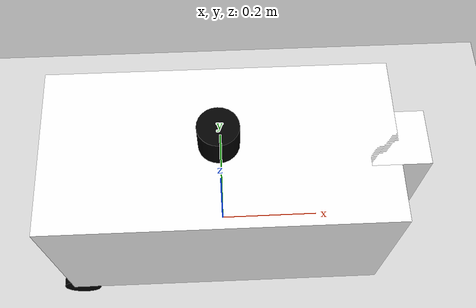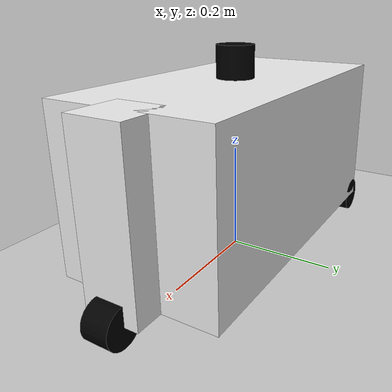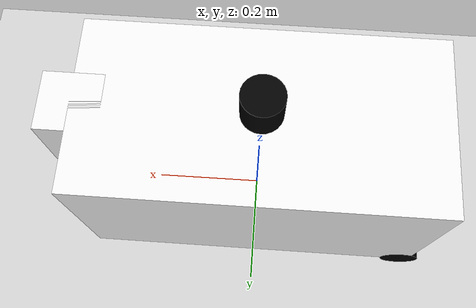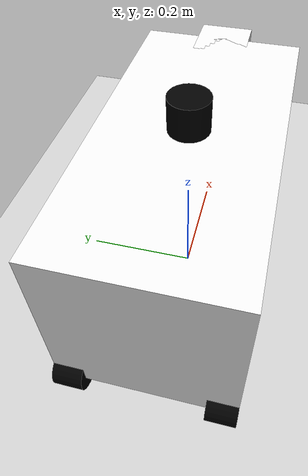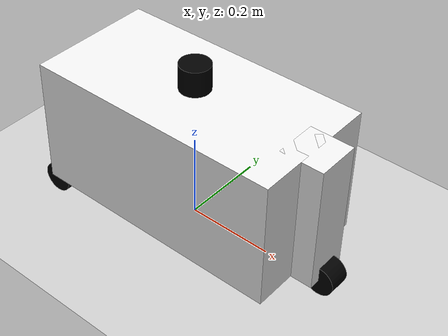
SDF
<sdf version='1.10'>
  <world name='empty'>
    <physics name='1ms' type='ignored'>
      <max_step_size>0.001</max_step_size>
      <real_time_factor>1</real_time_factor>
      <real_time_update_rate>1000</real_time_update_rate>
    </physics>
    <plugin name='gz::sim::systems::Physics' filename='gz-sim-physics-system'/>
    <plugin name='gz::sim::systems::UserCommands' filename='gz-sim-user-commands-system'/>
    <plugin name='gz::sim::systems::SceneBroadcaster' filename='gz-sim-scene-broadcaster-system'/>
    <plugin name='gz::sim::systems::Contact' filename='gz-sim-contact-system'/>
    <gravity>0 0 -9.8000000000000007</gravity>
    <magnetic_field>5.5644999999999998e-06 2.2875799999999999e-05 -4.2388400000000002e-05</magnetic_field>
    <atmosphere type='adiabatic'/>
    <scene>
      <ambient>0.400000006 0.400000006 0.400000006 1</ambient>
      <background>0.699999988 0.699999988 0.699999988 1</background>
      <shadows>true</shadows>
    </scene>
    <model name='ground_plane'>
      <static>true</static>
      <link name='link'>
        <collision name='collision'>
          <geometry>
            <plane>
              <normal>0 0 1</normal>
              <size>100 100</size>
            </plane>
          </geometry>
          <surface>
            <friction>
              <ode/>
            </friction>
            <bounce/>
            <contact/>
          </surface>
        </collision>
        <visual name='visual'>
          <geometry>
            <plane>
              <normal>0 0 1</normal>
              <size>100 100</size>
            </plane>
          </geometry>
          <material>
            <ambient>0.800000012 0.800000012 0.800000012 1</ambient>
            <diffuse>0.800000012 0.800000012 0.800000012 1</diffuse>
            <specular>0.800000012 0.800000012 0.800000012 1</specular>
          </material>
        </visual>
        <pose>0 0 0 0 0 0</pose>
        <inertial>
          <pose>0 0 0 0 0 0</pose>
          <mass>1</mass>
          <inertia>
            <ixx>1</ixx>
            <ixy>0</ixy>
            <ixz>0</ixz>
            <iyy>1</iyy>
            <iyz>0</iyz>
            <izz>1</izz>
          </inertia>
        </inertial>
        <enable_wind>false</enable_wind>
      </link>
      <pose>0 0 0 0 0 0</pose>
      <self_collide>false</self_collide>
    </model>
    <model name='tortoisebot'>
      <link name='base_link'>
        <inertial>
          <pose>0 0 0 0 0 0</pose>
          <mass>1</mass>
          <inertia>
            <ixx>0.014999999999999999</ixx>
            <ixy>0</ixy>
            <ixz>0</ixz>
            <iyy>0.037499999999999999</iyy>
            <iyz>0</iyz>
            <izz>0.037499999999999999</izz>
          </inertia>
        </inertial>
        <collision name='base_link_collision'>
          <pose>0 0 0 0 0 0</pose>
          <geometry>
            <box>
              <size>0.59999999999999998 0.29999999999999999 0.29999999999999999</size>
            </box>
          </geometry>
          <surface>
            <friction>
              <ode/>
            </friction>
            <bounce/>
            <contact/>
          </surface>
        </collision>
        <collision name='base_link_fixed_joint_lump__lidar_link_collision_1'>
          <pose>0 0 0.17999999999999999 0 0 0</pose>
          <geometry>
            <cylinder>
              <length>0.059999999999999998</length>
              <radius>0.035000000000000003</radius>
            </cylinder>
          </geometry>
          <surface>
            <contact>
              <ode/>
            </contact>
            <friction>
              <ode/>
            </friction>
            <bounce/>
          </surface>
        </collision>
        <visual name='base_link_visual'>
          <pose>0 0 0 0 0 0</pose>
          <geometry>
            <box>
              <size>0.59999999999999998 0.29999999999999999 0.29999999999999999</size>
            </box>
          </geometry>
          <material>
            <diffuse>0.9375 0.9375 0.9375 1</diffuse>
            <ambient>0.9375 0.9375 0.9375 1</ambient>
          </material>
        </visual>
        <visual name='base_link_fixed_joint_lump__lidar_link_visual_1'>
          <pose>0 0 0.17999999999999999 0 0 0</pose>
          <geometry>
            <cylinder>
              <length>0.059999999999999998</length>
              <radius>0.035000000000000003</radius>
            </cylinder>
          </geometry>
          <material>
            <diffuse>0 0 0 1</diffuse>
            <ambient>0 0 0 1</ambient>
          </material>
        </visual>
        <sensor name='gpu_lidar' type='gpu_lidar'>
          <pose>0 0 0.17999999999999999 0 0 0</pose>
          <topic>scan</topic>
          <update_rate>10</update_rate>
          <enable_metrics>false</enable_metrics>
          <lidar>
            <scan>
              <horizontal>
                <samples>720</samples>
                <resolution>1</resolution>
                <min_angle>-3.1400000000000001</min_angle>
                <max_angle>3.1400000000000001</max_angle>
              </horizontal>
              <vertical>
                <samples>1</samples>
                <min_angle>0</min_angle>
                <max_angle>0</max_angle>
                <resolution>0.01</resolution>
              </vertical>
            </scan>
            <range>
              <min>0.080000000000000002</min>
              <max>10</max>
              <resolution>0.01</resolution>
            </range>
            <noise>
              <type>gaussian</type>
              <mean>0</mean>
              <stddev>0.02</stddev>
            </noise>
            <visibility_mask>4294967295</visibility_mask>
          </lidar>
          <plugin name='gz::sim::systems::Sensors' filename='gz-sim-sensors-system'>
            <render_engine>ogre2</render_engine>
          </plugin>
        </sensor>
        <pose>0 0 0 0 0 0</pose>
        <enable_wind>false</enable_wind>
      </link>
      <joint name='front_caster_joint' type='revolute'>
        <pose>0 0 0 0 6.3679522799512102e-42 0</pose>
        <parent>base_link</parent>
        <child>front_caster</child>
        <axis>
          <xyz>-5.7054782209804604e-43 0 1</xyz>
          <limit>
            <lower>-inf</lower>
            <upper>inf</upper>
            <effort>inf</effort>
            <velocity>inf</velocity>
            <stiffness>100000000</stiffness>
            <dissipation>1</dissipation>
          </limit>
          <dynamics>
            <spring_reference>0</spring_reference>
            <spring_stiffness>0</spring_stiffness>
            <damping>0</damping>
            <friction>0</friction>
          </dynamics>
        </axis>
      </joint>
      <link name='front_caster'>
        <pose>0.29999999999999999 -7.9762041671258592e-25 1.1102230246251565e-16 -1.1747445874033268e-23 -1.5322800294808953e-26 2.0901109985332711e-12</pose>
        <inertial>
          <pose>0 0 0 0 0 0</pose>
          <mass>0.10000000000000001</mass>
          <inertia>
            <ixx>0.00083000000000000001</ixx>
            <ixy>0</ixy>
            <ixz>0</ixz>
            <iyy>0.00083000000000000001</iyy>
            <iyz>0</iyz>
            <izz>0.00016699999999999999</izz>
          </inertia>
        </inertial>
        <collision name='front_caster_collision'>
          <pose>0 0 0 0 0 0</pose>
          <geometry>
            <box>
              <size>0.10000000000000001 0.10000000000000001 0.29999999999999999</size>
            </box>
          </geometry>
          <surface>
            <friction>
              <ode/>
            </friction>
            <bounce/>
            <contact/>
          </surface>
        </collision>
        <visual name='front_caster_visual'>
          <pose>0 0 0 0 0 0</pose>
          <geometry>
            <box>
              <size>0.10000000000000001 0.10000000000000001 0.29999999999999999</size>
            </box>
          </geometry>
          <material>
            <diffuse>0.9375 0.9375 0.9375 1</diffuse>
            <ambient>0.9375 0.9375 0.9375 1</ambient>
          </material>
        </visual>
        <enable_wind>false</enable_wind>
      </link>
      <joint name='front_wheel_joint' type='revolute'>
        <pose>-5.5511151231257827e-17 8.3266726846886741e-17 4.5408589269355787e-17 -2.9387358770557175e-39 -1.6155871338926322e-27 -1.6155871338926322e-27</pose>
        <parent>front_caster</parent>
        <child>front_wheel</child>
        <axis>
          <xyz>-1.2116903504194741e-27 4.8939783509988934e-55 1</xyz>
          <limit>
            <lower>-inf</lower>
            <upper>inf</upper>
            <effort>inf</effort>
            <velocity>inf</velocity>
            <stiffness>100000000</stiffness>
            <dissipation>1</dissipation>
          </limit>
          <dynamics>
            <spring_reference>0</spring_reference>
            <spring_stiffness>0</spring_stiffness>
            <damping>0</damping>
            <friction>0</friction>
          </dynamics>
        </axis>
      </joint>
      <link name='front_wheel'>
        <pose>0.35000000000000014 1.0450554989636821e-13 -0.14999999999999983 -1.5708000000000004 3.9892729160713261e-12 2.090096345121454e-12</pose>
        <inertial>
          <pose>0 0 0 0 0 0</pose>
          <mass>0.10000000000000001</mass>
          <inertia>
            <ixx>5.1458000000000001e-05</ixx>
            <ixy>0</ixy>
            <ixz>0</ixz>
            <iyy>5.1458000000000001e-05</iyy>
            <iyz>0</iyz>
            <izz>6.1249999999999998e-05</izz>
          </inertia>
        </inertial>
        <collision name='front_wheel_collision'>
          <pose>0 0 0 0 0 0</pose>
          <geometry>
            <cylinder>
              <length>0.050000000000000003</length>
              <radius>0.035000000000000003</radius>
            </cylinder>
          </geometry>
          <surface>
            <friction>
              <ode/>
            </friction>
            <bounce/>
            <contact/>
          </surface>
        </collision>
        <visual name='front_wheel_visual'>
          <pose>0 0 0 0 0 0</pose>
          <geometry>
            <cylinder>
              <length>0.050000000000000003</length>
              <radius>0.035000000000000003</radius>
            </cylinder>
          </geometry>
          <material>
            <diffuse>0 0 0 1</diffuse>
            <ambient>0 0 0 1</ambient>
          </material>
        </visual>
        <enable_wind>false</enable_wind>
      </link>
      <joint name='left_wheel_joint' type='revolute'>
        <pose>0 -5.5511151231257827e-17 5.5511151231257827e-17 4.0091470651382935e-51 5.169878828456423e-26 1.5509636485369269e-25</pose>
        <parent>base_link</parent>
        <child>left_wheel</child>
        <axis>
          <xyz>0 0 1</xyz>
          <limit>
            <lower>-inf</lower>
            <upper>inf</upper>
            <effort>inf</effort>
            <velocity>inf</velocity>
            <stiffness>100000000</stiffness>
            <dissipation>1</dissipation>
          </limit>
          <dynamics>
            <spring_reference>0</spring_reference>
            <spring_stiffness>0</spring_stiffness>
            <damping>0</damping>
            <friction>0</friction>
          </dynamics>
        </axis>
      </joint>
      <link name='left_wheel'>
        <pose>-0.28250000002057285 0.12499999999816902 -0.14999972424970234 -1.5707999999475448 -5.879096778837494e-10 -6.6985783504433189e-14</pose>
        <inertial>
          <pose>0 0 0 0 0 0</pose>
          <mass>0.10000000000000001</mass>
          <inertia>
            <ixx>5.1458000000000001e-05</ixx>
            <ixy>0</ixy>
            <ixz>0</ixz>
            <iyy>5.1458000000000001e-05</iyy>
            <iyz>0</iyz>
            <izz>6.1249999999999998e-05</izz>
          </inertia>
        </inertial>
        <collision name='left_wheel_collision'>
          <pose>0 0 0 0 0 0</pose>
          <geometry>
            <cylinder>
              <length>0.050000000000000003</length>
              <radius>0.035000000000000003</radius>
            </cylinder>
          </geometry>
          <surface>
            <friction>
              <ode/>
            </friction>
            <bounce/>
            <contact/>
          </surface>
        </collision>
        <visual name='left_wheel_visual'>
          <pose>0 0 0 0 0 0</pose>
          <geometry>
            <cylinder>
              <length>0.050000000000000003</length>
              <radius>0.035000000000000003</radius>
            </cylinder>
          </geometry>
          <material>
            <diffuse>0 0 0 1</diffuse>
            <ambient>0 0 0 1</ambient>
          </material>
        </visual>
        <enable_wind>false</enable_wind>
      </link>
      <joint name='right_wheel_joint' type='revolute'>
        <pose>-1.1102230246251565e-16 8.3266726846886741e-17 1.3877787807814457e-17 0 0 5.169878828456423e-26</pose>
        <parent>base_link</parent>
        <child>right_wheel</child>
        <axis>
          <xyz>0 0 1</xyz>
          <limit>
            <lower>-inf</lower>
            <upper>inf</upper>
            <effort>inf</effort>
            <velocity>inf</velocity>
            <stiffness>100000000</stiffness>
            <dissipation>1</dissipation>
          </limit>
          <dynamics>
            <spring_reference>0</spring_reference>
            <spring_stiffness>0</spring_stiffness>
            <damping>0</damping>
            <friction>0</friction>
          </dynamics>
        </axis>
      </joint>
      <link name='right_wheel'>
        <pose>-0.28250000002058945 -0.12500000000183098 -0.14999972426281619 -1.5707999999475448 -5.8790979906942163e-10 -6.6985783057393767e-14</pose>
        <inertial>
          <pose>0 0 0 0 0 0</pose>
          <mass>0.10000000000000001</mass>
          <inertia>
            <ixx>5.1458000000000001e-05</ixx>
            <ixy>0</ixy>
            <ixz>0</ixz>
            <iyy>5.1458000000000001e-05</iyy>
            <iyz>0</iyz>
            <izz>6.1249999999999998e-05</izz>
          </inertia>
        </inertial>
        <collision name='right_wheel_collision'>
          <pose>0 0 0 0 0 0</pose>
          <geometry>
            <cylinder>
              <length>0.050000000000000003</length>
              <radius>0.035000000000000003</radius>
            </cylinder>
          </geometry>
          <surface>
            <friction>
              <ode/>
            </friction>
            <bounce/>
            <contact/>
          </surface>
        </collision>
        <visual name='right_wheel_visual'>
          <pose>0 0 0 0 0 0</pose>
          <geometry>
            <cylinder>
              <length>0.050000000000000003</length>
              <radius>0.035000000000000003</radius>
            </cylinder>
          </geometry>
          <material>
            <diffuse>0 0 0 1</diffuse>
            <ambient>0 0 0 1</ambient>
          </material>
        </visual>
        <enable_wind>false</enable_wind>
      </link>
      <plugin name='gz::sim::systems::DiffDrive' filename='gz-sim-diff-drive-system'>
        <left_joint>left_wheel_joint</left_joint>
        <right_joint>right_wheel_joint</right_joint>
        <max_linear_acceleration>100</max_linear_acceleration>
        <max_angular_acceleration>100</max_angular_acceleration>
        <wheel_separation>0.25</wheel_separation>
        <wheel_radius>0.035</wheel_radius>
        <odom_publish_frequency>1</odom_publish_frequency>
      </plugin>
      <plugin name='gz::sim::systems::JointStatePublisher' filename='gz-sim-joint-state-publisher-system'>
        <topic>joint_states</topic>
        <joint_name>left_wheel_joint</joint_name>
        <joint_name>right_wheel_joint</joint_name>
        <joint_name>front_caster_joint</joint_name>
        <joint_name>front_wheel_joint</joint_name>
      </plugin>
      <frame name='lidar_joint' attached_to='base_link'>
        <pose>0 0 0.17999999999999999 0 0 0</pose>
      </frame>
      <frame name='lidar_link' attached_to='lidar_joint'>
        <pose>0 0 0 0 0 0</pose>
      </frame>
      <pose>2.0413332698880009e-11 -3.4645794577300929e-09 0.1849996977299031 1.8727206217115038e-08 1.0938925436384308e-10 -1.5340525459104181e-13</pose>
      <static>false</static>
      <self_collide>false</self_collide>
    </model>
    <light name='sun' type='directional'>
      <pose>0 0 10 0 0 0</pose>
      <cast_shadows>true</cast_shadows>
      <intensity>1</intensity>
      <direction>-0.5 0.10000000000000001 -0.90000000000000002</direction>
      <diffuse>0.800000012 0.800000012 0.800000012 1</diffuse>
      <specular>0.200000003 0.200000003 0.200000003 1</specular>
      <attenuation>
        <range>1000</range>
        <linear>0.01</linear>
        <constant>0.90000000000000002</constant>
        <quadratic>0.001</quadratic>
      </attenuation>
      <spot>
        <inner_angle>0</inner_angle>
        <outer_angle>0</outer_angle>
        <falloff>0</falloff>
      </spot>
    </light>
  </world>
</sdf>
